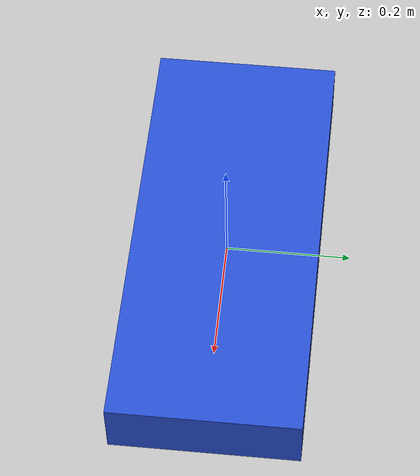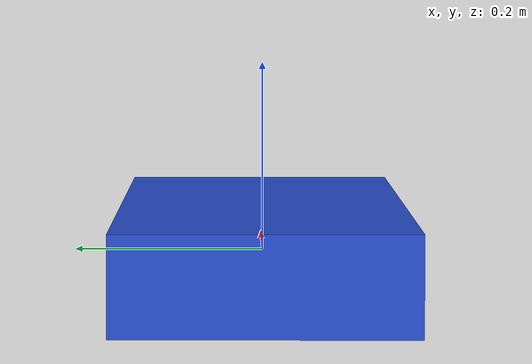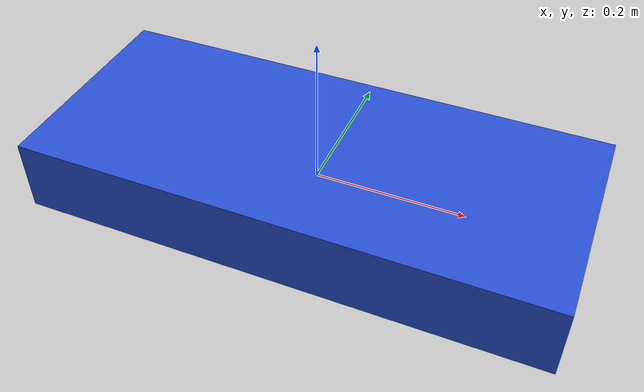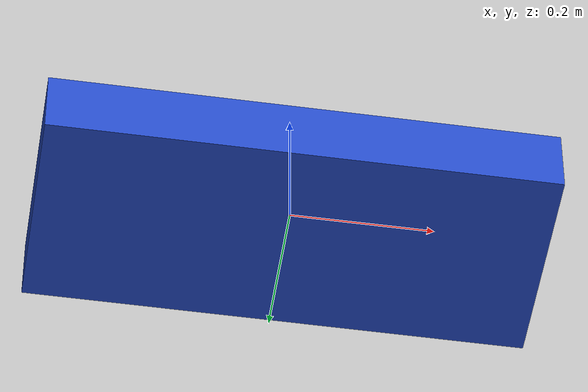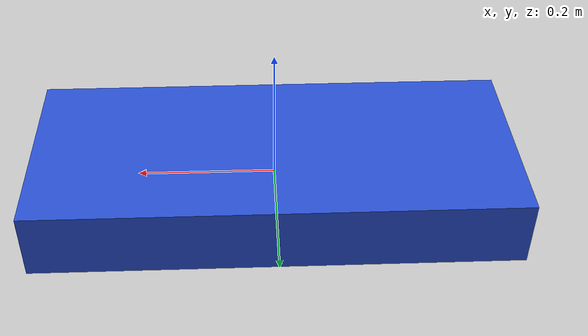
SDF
<sdf version="1.4">
  <model name="bar_70_30_10">
    <static>0</static>
    <link name="link">

      <collision name="colision1">
        <pose>0 0 0 0 0 0</pose>
        <geometry>
          <mesh>
            <uri>model://bar_70_30_10/bar_70_30_10.dae</uri>
	    <scale> 1 1 1 </scale>
          </mesh>
        </geometry>
        <surface>
          <bounce />
          <friction>
            <ode />
          </friction>
          <contact>
            <ode />
          </contact>
        </surface>
      </collision>

      <visual name="visual1">
        <pose>0 0 0 0 0 0</pose>
        <geometry>
          <mesh>
            <uri>model://bar_70_30_10/bar_70_30_10.dae</uri>
	    <scale> 1 1 1 </scale>
          </mesh>
        </geometry>
        <material>
          <script>
            <uri>file://media/materials/scripts/gazebo.material</uri>
            <name>Gazebo/Blue</name>
          </script>
        </material>
      </visual>

      <velocity_decay>
        <linear>0.000000</linear>
        <angular>0.000000</angular>
      </velocity_decay>
      <self_collide>0</self_collide>
      <kinematic>1</kinematic>
      <gravity>1</gravity>
    </link>
  </model>
</sdf>
